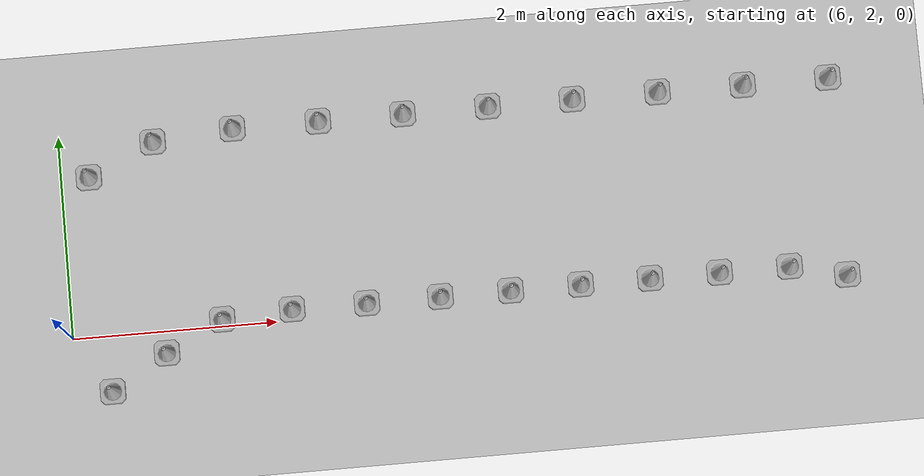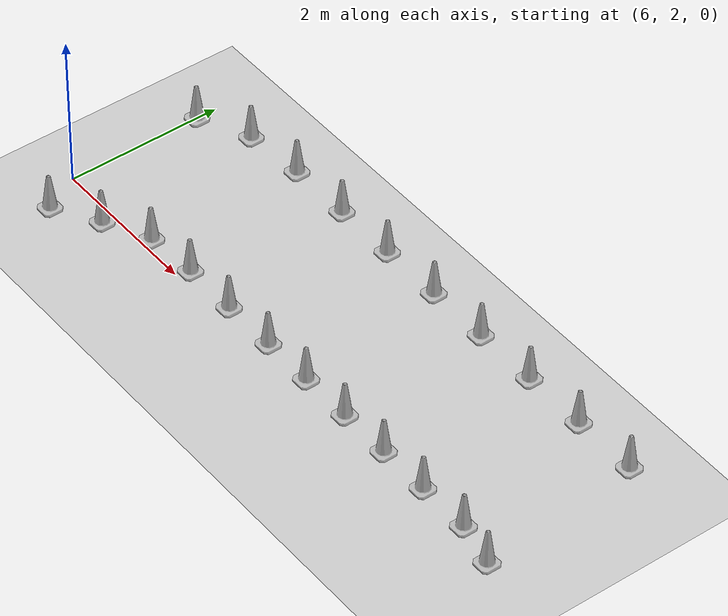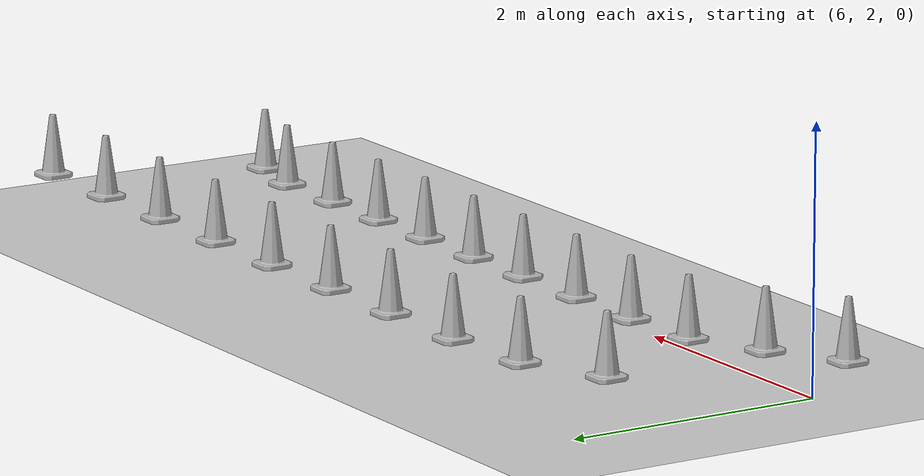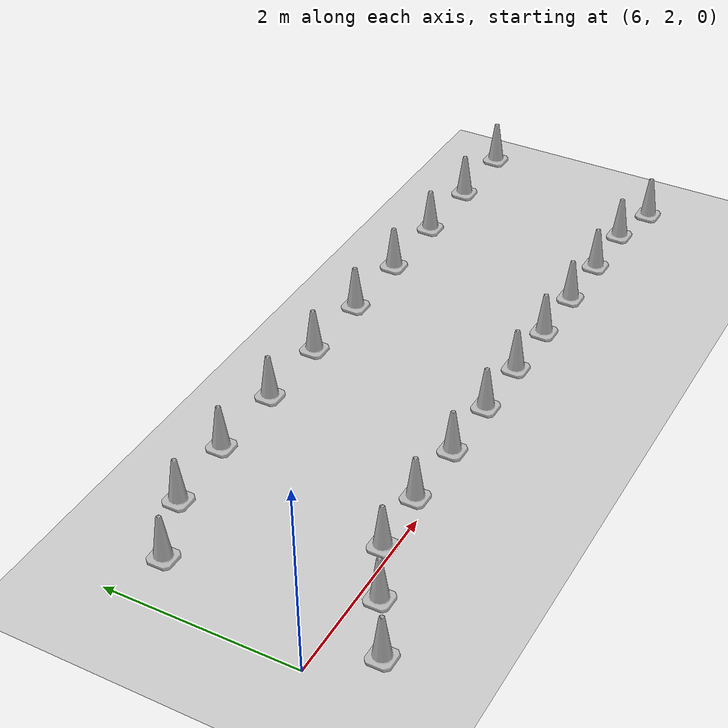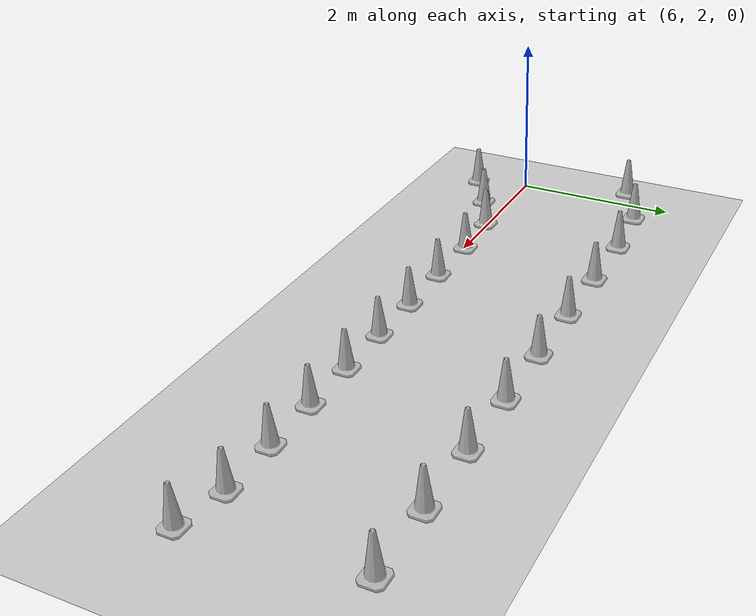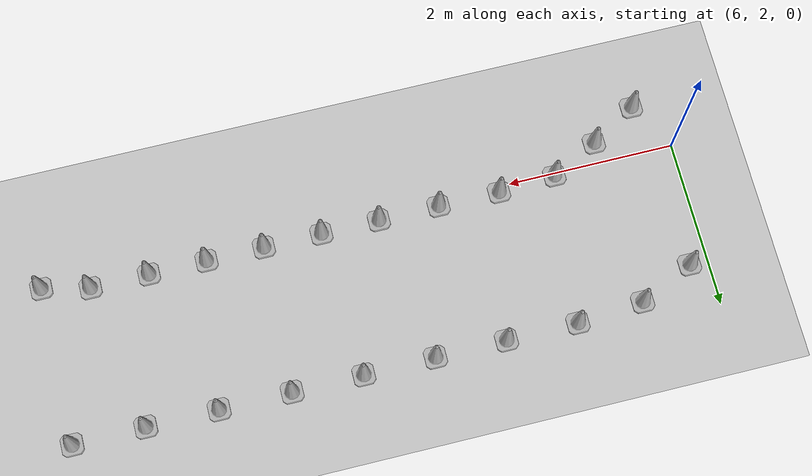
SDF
<sdf version="1.7">
 <world name="default">
  <model name="Construction_Cone_b_10">
   <link name="link">
    <inertial>
     <inertia><ixx>1</ixx><ixy>0</ixy><ixz>0</ixz><iyy>1</iyy><iyz>0</iyz><izz>1</izz></inertia>
     <mass>1</mass>
    </inertial>
    <visual name="visual">
     <geometry>
      <mesh><scale>4.9 4.9 4.5</scale><uri>./construction_cone/meshes/construction_cone_b.dae</uri></mesh>
     </geometry>
     <material><shader type="pixel"/></material>
    </visual>
    <collision name="collision">
     <geometry>
      <mesh><uri>./construction_cone/meshes/construction_cone_b.dae</uri><scale>4.9 4.9 4.5</scale></mesh>
     </geometry>
     <surface>
      <friction>
       <ode><mu>1</mu><mu2>1</mu2><fdir1>0 0 0</fdir1><slip1>0</slip1><slip2>0</slip2></ode>
       <torsional>
        <coefficient>1</coefficient>
        <patch_radius>0</patch_radius>
        <surface_radius>0</surface_radius>
        <use_patch_radius>1</use_patch_radius>
        <ode><slip>0</slip></ode>
       </torsional>
      </friction>
      <bounce><restitution_coefficient>0</restitution_coefficient><threshold>1e+06</threshold></bounce>
      <contact>
       <collide_without_contact>0</collide_without_contact>
       <collide_without_contact_bitmask>1</collide_without_contact_bitmask>
       <collide_bitmask>1</collide_bitmask>
       <ode>
        <soft_cfm>0</soft_cfm>
        <soft_erp>0.2</soft_erp>
        <kp>1e+13</kp>
        <kd>1</kd>
        <max_vel>0.01</max_vel>
        <min_depth>0</min_depth>
       </ode>
       <bullet>
        <split_impulse>1</split_impulse>
        <split_impulse_penetration_threshold>-0.01</split_impulse_penetration_threshold>
        <soft_cfm>0</soft_cfm>
        <soft_erp>0.2</soft_erp>
        <kp>1e+13</kp>
        <kd>1</kd>
       </bullet>
      </contact>
     </surface>
    </collision>
   </link>
   <static>0</static>
   <pose>6.35511 1.44825 0.1 0 0 0</pose>
  </model>
  <model name="Construction_Cone_b_11">
   <link name="link">
    <inertial>
     <inertia><ixx>1</ixx><ixy>0</ixy><ixz>0</ixz><iyy>1</iyy><iyz>0</iyz><izz>1</izz></inertia>
     <mass>1</mass>
    </inertial>
    <visual name="visual">
     <geometry>
      <mesh><scale>4.9 4.9 4.5</scale><uri>./construction_cone/meshes/construction_cone_b.dae</uri></mesh>
     </geometry>
     <material><shader type="pixel"/></material>
    </visual>
    <collision name="collision">
     <geometry>
      <mesh><uri>./construction_cone/meshes/construction_cone_b.dae</uri><scale>4.9 4.9 4.5</scale></mesh>
     </geometry>
     <surface>
      <friction>
       <ode><mu>1</mu><mu2>1</mu2><fdir1>0 0 0</fdir1><slip1>0</slip1><slip2>0</slip2></ode>
       <torsional>
        <coefficient>1</coefficient>
        <patch_radius>0</patch_radius>
        <surface_radius>0</surface_radius>
        <use_patch_radius>1</use_patch_radius>
        <ode><slip>0</slip></ode>
       </torsional>
      </friction>
      <bounce><restitution_coefficient>0</restitution_coefficient><threshold>1e+06</threshold></bounce>
      <contact>
       <collide_without_contact>0</collide_without_contact>
       <collide_without_contact_bitmask>1</collide_without_contact_bitmask>
       <collide_bitmask>1</collide_bitmask>
       <ode>
        <soft_cfm>0</soft_cfm>
        <soft_erp>0.2</soft_erp>
        <kp>1e+13</kp>
        <kd>1</kd>
        <max_vel>0.01</max_vel>
        <min_depth>0</min_depth>
       </ode>
       <bullet>
        <split_impulse>1</split_impulse>
        <split_impulse_penetration_threshold>-0.01</split_impulse_penetration_threshold>
        <soft_cfm>0</soft_cfm>
        <soft_erp>0.2</soft_erp>
        <kp>1e+13</kp>
        <kd>1</kd>
       </bullet>
      </contact>
     </surface>
    </collision>
   </link>
   <static>0</static>
   <pose>6.90827 1.77822 0.1 0 0 0</pose>
  </model>
  <model name="Construction_Cone_b_12">
   <link name="link">
    <inertial>
     <inertia><ixx>1</ixx><ixy>0</ixy><ixz>0</ixz><iyy>1</iyy><iyz>0</iyz><izz>1</izz></inertia>
     <mass>1</mass>
    </inertial>
    <visual name="visual">
     <geometry>
      <mesh><scale>4.9 4.9 4.5</scale><uri>./construction_cone/meshes/construction_cone_b.dae</uri></mesh>
     </geometry>
     <material><shader type="pixel"/></material>
    </visual>
    <collision name="collision">
     <geometry>
      <mesh><uri>./construction_cone/meshes/construction_cone_b.dae</uri><scale>4.9 4.9 4.5</scale></mesh>
     </geometry>
     <surface>
      <friction>
       <ode><mu>1</mu><mu2>1</mu2><fdir1>0 0 0</fdir1><slip1>0</slip1><slip2>0</slip2></ode>
       <torsional>
        <coefficient>1</coefficient>
        <patch_radius>0</patch_radius>
        <surface_radius>0</surface_radius>
        <use_patch_radius>1</use_patch_radius>
        <ode><slip>0</slip></ode>
       </torsional>
      </friction>
      <bounce><restitution_coefficient>0</restitution_coefficient><threshold>1e+06</threshold></bounce>
      <contact>
       <collide_without_contact>0</collide_without_contact>
       <collide_without_contact_bitmask>1</collide_without_contact_bitmask>
       <collide_bitmask>1</collide_bitmask>
       <ode>
        <soft_cfm>0</soft_cfm>
        <soft_erp>0.2</soft_erp>
        <kp>1e+13</kp>
        <kd>1</kd>
        <max_vel>0.01</max_vel>
        <min_depth>0</min_depth>
       </ode>
       <bullet>
        <split_impulse>1</split_impulse>
        <split_impulse_penetration_threshold>-0.01</split_impulse_penetration_threshold>
        <soft_cfm>0</soft_cfm>
        <soft_erp>0.2</soft_erp>
        <kp>1e+13</kp>
        <kd>1</kd>
       </bullet>
      </contact>
     </surface>
    </collision>
   </link>
   <static>0</static>
   <pose>7.47272 2.06075 0.1 0 0 0</pose>
  </model>
  <model name="Construction_Cone_b_13">
   <link name="link">
    <inertial>
     <inertia><ixx>1</ixx><ixy>0</ixy><ixz>0</ixz><iyy>1</iyy><iyz>0</iyz><izz>1</izz></inertia>
     <mass>1</mass>
    </inertial>
    <visual name="visual">
     <geometry>
      <mesh><scale>4.9 4.9 4.5</scale><uri>./construction_cone/meshes/construction_cone_b.dae</uri></mesh>
     </geometry>
     <material><shader type="pixel"/></material>
    </visual>
    <collision name="collision">
     <geometry>
      <mesh><uri>./construction_cone/meshes/construction_cone_b.dae</uri><scale>4.9 4.9 4.5</scale></mesh>
     </geometry>
     <surface>
      <friction>
       <ode><mu>1</mu><mu2>1</mu2><fdir1>0 0 0</fdir1><slip1>0</slip1><slip2>0</slip2></ode>
       <torsional>
        <coefficient>1</coefficient>
        <patch_radius>0</patch_radius>
        <surface_radius>0</surface_radius>
        <use_patch_radius>1</use_patch_radius>
        <ode><slip>0</slip></ode>
       </torsional>
      </friction>
      <bounce><restitution_coefficient>0</restitution_coefficient><threshold>1e+06</threshold></bounce>
      <contact>
       <collide_without_contact>0</collide_without_contact>
       <collide_without_contact_bitmask>1</collide_without_contact_bitmask>
       <collide_bitmask>1</collide_bitmask>
       <ode>
        <soft_cfm>0</soft_cfm>
        <soft_erp>0.2</soft_erp>
        <kp>1e+13</kp>
        <kd>1</kd>
        <max_vel>0.01</max_vel>
        <min_depth>0</min_depth>
       </ode>
       <bullet>
        <split_impulse>1</split_impulse>
        <split_impulse_penetration_threshold>-0.01</split_impulse_penetration_threshold>
        <soft_cfm>0</soft_cfm>
        <soft_erp>0.2</soft_erp>
        <kp>1e+13</kp>
        <kd>1</kd>
       </bullet>
      </contact>
     </surface>
    </collision>
   </link>
   <static>0</static>
   <pose>8.15922 2.10175 0.1 0 0 0</pose>
  </model>
  <model name="Construction_Cone_b_14">
   <link name="link">
    <inertial>
     <inertia><ixx>1</ixx><ixy>0</ixy><ixz>0</ixz><iyy>1</iyy><iyz>0</iyz><izz>1</izz></inertia>
     <mass>1</mass>
    </inertial>
    <visual name="visual">
     <geometry>
      <mesh><scale>4.9 4.9 4.5</scale><uri>./construction_cone/meshes/construction_cone_b.dae</uri></mesh>
     </geometry>
     <material><shader type="pixel"/></material>
    </visual>
    <collision name="collision">
     <geometry>
      <mesh><uri>./construction_cone/meshes/construction_cone_b.dae</uri><scale>4.9 4.9 4.5</scale></mesh>
     </geometry>
     <surface>
      <friction>
       <ode><mu>1</mu><mu2>1</mu2><fdir1>0 0 0</fdir1><slip1>0</slip1><slip2>0</slip2></ode>
       <torsional>
        <coefficient>1</coefficient>
        <patch_radius>0</patch_radius>
        <surface_radius>0</surface_radius>
        <use_patch_radius>1</use_patch_radius>
        <ode><slip>0</slip></ode>
       </torsional>
      </friction>
      <bounce><restitution_coefficient>0</restitution_coefficient><threshold>1e+06</threshold></bounce>
      <contact>
       <collide_without_contact>0</collide_without_contact>
       <collide_without_contact_bitmask>1</collide_without_contact_bitmask>
       <collide_bitmask>1</collide_bitmask>
       <ode>
        <soft_cfm>0</soft_cfm>
        <soft_erp>0.2</soft_erp>
        <kp>1e+13</kp>
        <kd>1</kd>
        <max_vel>0.01</max_vel>
        <min_depth>0</min_depth>
       </ode>
       <bullet>
        <split_impulse>1</split_impulse>
        <split_impulse_penetration_threshold>-0.01</split_impulse_penetration_threshold>
        <soft_cfm>0</soft_cfm>
        <soft_erp>0.2</soft_erp>
        <kp>1e+13</kp>
        <kd>1</kd>
       </bullet>
      </contact>
     </surface>
    </collision>
   </link>
   <static>0</static>
   <pose>8.89133 2.09742 0.1 0 0 0</pose>
  </model>
  <model name="Construction_Cone_b_15">
   <link name="link">
    <inertial>
     <inertia><ixx>1</ixx><ixy>0</ixy><ixz>0</ixz><iyy>1</iyy><iyz>0</iyz><izz>1</izz></inertia>
     <mass>1</mass>
    </inertial>
    <visual name="visual">
     <geometry>
      <mesh><scale>4.9 4.9 4.5</scale><uri>./construction_cone/meshes/construction_cone_b.dae</uri></mesh>
     </geometry>
     <material><shader type="pixel"/></material>
    </visual>
    <collision name="collision">
     <geometry>
      <mesh><uri>./construction_cone/meshes/construction_cone_b.dae</uri><scale>4.9 4.9 4.5</scale></mesh>
     </geometry>
     <surface>
      <friction>
       <ode><mu>1</mu><mu2>1</mu2><fdir1>0 0 0</fdir1><slip1>0</slip1><slip2>0</slip2></ode>
       <torsional>
        <coefficient>1</coefficient>
        <patch_radius>0</patch_radius>
        <surface_radius>0</surface_radius>
        <use_patch_radius>1</use_patch_radius>
        <ode><slip>0</slip></ode>
       </torsional>
      </friction>
      <bounce><restitution_coefficient>0</restitution_coefficient><threshold>1e+06</threshold></bounce>
      <contact>
       <collide_without_contact>0</collide_without_contact>
       <collide_without_contact_bitmask>1</collide_without_contact_bitmask>
       <collide_bitmask>1</collide_bitmask>
       <ode>
        <soft_cfm>0</soft_cfm>
        <soft_erp>0.2</soft_erp>
        <kp>1e+13</kp>
        <kd>1</kd>
        <max_vel>0.01</max_vel>
        <min_depth>0</min_depth>
       </ode>
       <bullet>
        <split_impulse>1</split_impulse>
        <split_impulse_penetration_threshold>-0.01</split_impulse_penetration_threshold>
        <soft_cfm>0</soft_cfm>
        <soft_erp>0.2</soft_erp>
        <kp>1e+13</kp>
        <kd>1</kd>
       </bullet>
      </contact>
     </surface>
    </collision>
   </link>
   <static>0</static>
   <pose>9.61253 2.09972 0.1 0 0 0</pose>
  </model>
  <model name="Construction_Cone_b_16">
   <link name="link">
    <inertial>
     <inertia><ixx>1</ixx><ixy>0</ixy><ixz>0</ixz><iyy>1</iyy><iyz>0</iyz><izz>1</izz></inertia>
     <mass>1</mass>
    </inertial>
    <visual name="visual">
     <geometry>
      <mesh><scale>4.9 4.9 4.5</scale><uri>./construction_cone/meshes/construction_cone_b.dae</uri></mesh>
     </geometry>
     <material><shader type="pixel"/></material>
    </visual>
    <collision name="collision">
     <geometry>
      <mesh><uri>./construction_cone/meshes/construction_cone_b.dae</uri><scale>4.9 4.9 4.5</scale></mesh>
     </geometry>
     <surface>
      <friction>
       <ode><mu>1</mu><mu2>1</mu2><fdir1>0 0 0</fdir1><slip1>0</slip1><slip2>0</slip2></ode>
       <torsional>
        <coefficient>1</coefficient>
        <patch_radius>0</patch_radius>
        <surface_radius>0</surface_radius>
        <use_patch_radius>1</use_patch_radius>
        <ode><slip>0</slip></ode>
       </torsional>
      </friction>
      <bounce><restitution_coefficient>0</restitution_coefficient><threshold>1e+06</threshold></bounce>
      <contact>
       <collide_without_contact>0</collide_without_contact>
       <collide_without_contact_bitmask>1</collide_without_contact_bitmask>
       <collide_bitmask>1</collide_bitmask>
       <ode>
        <soft_cfm>0</soft_cfm>
        <soft_erp>0.2</soft_erp>
        <kp>1e+13</kp>
        <kd>1</kd>
        <max_vel>0.01</max_vel>
        <min_depth>0</min_depth>
       </ode>
       <bullet>
        <split_impulse>1</split_impulse>
        <split_impulse_penetration_threshold>-0.01</split_impulse_penetration_threshold>
        <soft_cfm>0</soft_cfm>
        <soft_erp>0.2</soft_erp>
        <kp>1e+13</kp>
        <kd>1</kd>
       </bullet>
      </contact>
     </surface>
    </collision>
   </link>
   <static>0</static>
   <pose>10.3016 2.09929 0.1 0 0 0</pose>
  </model>
  <model name="Construction_Cone_b_17">
   <link name="link">
    <inertial>
     <inertia><ixx>1</ixx><ixy>0</ixy><ixz>0</ixz><iyy>1</iyy><iyz>0</iyz><izz>1</izz></inertia>
     <mass>1</mass>
    </inertial>
    <visual name="visual">
     <geometry>
      <mesh><scale>4.9 4.9 4.5</scale><uri>./construction_cone/meshes/construction_cone_b.dae</uri></mesh>
     </geometry>
     <material><shader type="pixel"/></material>
    </visual>
    <collision name="collision">
     <geometry>
      <mesh><uri>./construction_cone/meshes/construction_cone_b.dae</uri><scale>4.9 4.9 4.5</scale></mesh>
     </geometry>
     <surface>
      <friction>
       <ode><mu>1</mu><mu2>1</mu2><fdir1>0 0 0</fdir1><slip1>0</slip1><slip2>0</slip2></ode>
       <torsional>
        <coefficient>1</coefficient>
        <patch_radius>0</patch_radius>
        <surface_radius>0</surface_radius>
        <use_patch_radius>1</use_patch_radius>
        <ode><slip>0</slip></ode>
       </torsional>
      </friction>
      <bounce><restitution_coefficient>0</restitution_coefficient><threshold>1e+06</threshold></bounce>
      <contact>
       <collide_without_contact>0</collide_without_contact>
       <collide_without_contact_bitmask>1</collide_without_contact_bitmask>
       <collide_bitmask>1</collide_bitmask>
       <ode>
        <soft_cfm>0</soft_cfm>
        <soft_erp>0.2</soft_erp>
        <kp>1e+13</kp>
        <kd>1</kd>
        <max_vel>0.01</max_vel>
        <min_depth>0</min_depth>
       </ode>
       <bullet>
        <split_impulse>1</split_impulse>
        <split_impulse_penetration_threshold>-0.01</split_impulse_penetration_threshold>
        <soft_cfm>0</soft_cfm>
        <soft_erp>0.2</soft_erp>
        <kp>1e+13</kp>
        <kd>1</kd>
       </bullet>
      </contact>
     </surface>
    </collision>
   </link>
   <static>0</static>
   <pose>10.9894 2.10103 0.1 0 0 0</pose>
  </model>
  <model name="Construction_Cone_b_18">
   <link name="link">
    <inertial>
     <inertia><ixx>1</ixx><ixy>0</ixy><ixz>0</ixz><iyy>1</iyy><iyz>0</iyz><izz>1</izz></inertia>
     <mass>1</mass>
    </inertial>
    <visual name="visual">
     <geometry>
      <mesh><scale>4.9 4.9 4.5</scale><uri>./construction_cone/meshes/construction_cone_b.dae</uri></mesh>
     </geometry>
     <material><shader type="pixel"/></material>
    </visual>
    <collision name="collision">
     <geometry>
      <mesh><uri>./construction_cone/meshes/construction_cone_b.dae</uri><scale>4.9 4.9 4.5</scale></mesh>
     </geometry>
     <surface>
      <friction>
       <ode><mu>1</mu><mu2>1</mu2><fdir1>0 0 0</fdir1><slip1>0</slip1><slip2>0</slip2></ode>
       <torsional>
        <coefficient>1</coefficient>
        <patch_radius>0</patch_radius>
        <surface_radius>0</surface_radius>
        <use_patch_radius>1</use_patch_radius>
        <ode><slip>0</slip></ode>
       </torsional>
      </friction>
      <bounce><restitution_coefficient>0</restitution_coefficient><threshold>1e+06</threshold></bounce>
      <contact>
       <collide_without_contact>0</collide_without_contact>
       <collide_without_contact_bitmask>1</collide_without_contact_bitmask>
       <collide_bitmask>1</collide_bitmask>
       <ode>
        <soft_cfm>0</soft_cfm>
        <soft_erp>0.2</soft_erp>
        <kp>1e+13</kp>
        <kd>1</kd>
        <max_vel>0.01</max_vel>
        <min_depth>0</min_depth>
       </ode>
       <bullet>
        <split_impulse>1</split_impulse>
        <split_impulse_penetration_threshold>-0.01</split_impulse_penetration_threshold>
        <soft_cfm>0</soft_cfm>
        <soft_erp>0.2</soft_erp>
        <kp>1e+13</kp>
        <kd>1</kd>
       </bullet>
      </contact>
     </surface>
    </collision>
   </link>
   <static>0</static>
   <pose>11.6712 2.10049 0.1 0 0 0</pose>
  </model>
  <model name="Construction_Cone_b_19">
   <link name="link">
    <inertial>
     <inertia><ixx>1</ixx><ixy>0</ixy><ixz>0</ixz><iyy>1</iyy><iyz>0</iyz><izz>1</izz></inertia>
     <mass>1</mass>
    </inertial>
    <visual name="visual">
     <geometry>
      <mesh><scale>4.9 4.9 4.5</scale><uri>./construction_cone/meshes/construction_cone_b.dae</uri></mesh>
     </geometry>
     <material><shader type="pixel"/></material>
    </visual>
    <collision name="collision">
     <geometry>
      <mesh><uri>./construction_cone/meshes/construction_cone_b.dae</uri><scale>4.9 4.9 4.5</scale></mesh>
     </geometry>
     <surface>
      <friction>
       <ode><mu>1</mu><mu2>1</mu2><fdir1>0 0 0</fdir1><slip1>0</slip1><slip2>0</slip2></ode>
       <torsional>
        <coefficient>1</coefficient>
        <patch_radius>0</patch_radius>
        <surface_radius>0</surface_radius>
        <use_patch_radius>1</use_patch_radius>
        <ode><slip>0</slip></ode>
       </torsional>
      </friction>
      <bounce><restitution_coefficient>0</restitution_coefficient><threshold>1e+06</threshold></bounce>
      <contact>
       <collide_without_contact>0</collide_without_contact>
       <collide_without_contact_bitmask>1</collide_without_contact_bitmask>
       <collide_bitmask>1</collide_bitmask>
       <ode>
        <soft_cfm>0</soft_cfm>
        <soft_erp>0.2</soft_erp>
        <kp>1e+13</kp>
        <kd>1</kd>
        <max_vel>0.01</max_vel>
        <min_depth>0</min_depth>
       </ode>
       <bullet>
        <split_impulse>1</split_impulse>
        <split_impulse_penetration_threshold>-0.01</split_impulse_penetration_threshold>
        <soft_cfm>0</soft_cfm>
        <soft_erp>0.2</soft_erp>
        <kp>1e+13</kp>
        <kd>1</kd>
       </bullet>
      </contact>
     </surface>
    </collision>
   </link>
   <static>0</static>
   <pose>12.3527 2.09939 0.1 0 0 0</pose>
  </model>
  <model name="Construction_Cone_b_20">
   <link name="link">
    <inertial>
     <inertia><ixx>1</ixx><ixy>0</ixy><ixz>0</ixz><iyy>1</iyy><iyz>0</iyz><izz>1</izz></inertia>
     <mass>1</mass>
    </inertial>
    <visual name="visual">
     <geometry>
      <mesh><scale>4.9 4.9 4.5</scale><uri>./construction_cone/meshes/construction_cone_b.dae</uri></mesh>
     </geometry>
     <material><shader type="pixel"/></material>
    </visual>
    <collision name="collision">
     <geometry>
      <mesh><uri>./construction_cone/meshes/construction_cone_b.dae</uri><scale>4.9 4.9 4.5</scale></mesh>
     </geometry>
     <surface>
      <friction>
       <ode><mu>1</mu><mu2>1</mu2><fdir1>0 0 0</fdir1><slip1>0</slip1><slip2>0</slip2></ode>
       <torsional>
        <coefficient>1</coefficient>
        <patch_radius>0</patch_radius>
        <surface_radius>0</surface_radius>
        <use_patch_radius>1</use_patch_radius>
        <ode><slip>0</slip></ode>
       </torsional>
      </friction>
      <bounce><restitution_coefficient>0</restitution_coefficient><threshold>1e+06</threshold></bounce>
      <contact>
       <collide_without_contact>0</collide_without_contact>
       <collide_without_contact_bitmask>1</collide_without_contact_bitmask>
       <collide_bitmask>1</collide_bitmask>
       <ode>
        <soft_cfm>0</soft_cfm>
        <soft_erp>0.2</soft_erp>
        <kp>1e+13</kp>
        <kd>1</kd>
        <max_vel>0.01</max_vel>
        <min_depth>0</min_depth>
       </ode>
       <bullet>
        <split_impulse>1</split_impulse>
        <split_impulse_penetration_threshold>-0.01</split_impulse_penetration_threshold>
        <soft_cfm>0</soft_cfm>
        <soft_erp>0.2</soft_erp>
        <kp>1e+13</kp>
        <kd>1</kd>
       </bullet>
      </contact>
     </surface>
    </collision>
   </link>
   <static>0</static>
   <pose>13.0406 2.09967 0.1 0 0 0</pose>
  </model>
  <model name="Construction_Cone_b_21">
   <link name="link">
    <inertial>
     <inertia><ixx>1</ixx><ixy>0</ixy><ixz>0</ixz><iyy>1</iyy><iyz>0</iyz><izz>1</izz></inertia>
     <mass>1</mass>
    </inertial>
    <visual name="visual">
     <geometry>
      <mesh><scale>4.9 4.9 4.5</scale><uri>./construction_cone/meshes/construction_cone_b.dae</uri></mesh>
     </geometry>
     <material><shader type="pixel"/></material>
    </visual>
    <collision name="collision">
     <geometry>
      <mesh><uri>./construction_cone/meshes/construction_cone_b.dae</uri><scale>4.9 4.9 4.5</scale></mesh>
     </geometry>
     <surface>
      <friction>
       <ode><mu>1</mu><mu2>1</mu2><fdir1>0 0 0</fdir1><slip1>0</slip1><slip2>0</slip2></ode>
       <torsional>
        <coefficient>1</coefficient>
        <patch_radius>0</patch_radius>
        <surface_radius>0</surface_radius>
        <use_patch_radius>1</use_patch_radius>
        <ode><slip>0</slip></ode>
       </torsional>
      </friction>
      <bounce><restitution_coefficient>0</restitution_coefficient><threshold>1e+06</threshold></bounce>
      <contact>
       <collide_without_contact>0</collide_without_contact>
       <collide_without_contact_bitmask>1</collide_without_contact_bitmask>
       <collide_bitmask>1</collide_bitmask>
       <ode>
        <soft_cfm>0</soft_cfm>
        <soft_erp>0.2</soft_erp>
        <kp>1e+13</kp>
        <kd>1</kd>
        <max_vel>0.01</max_vel>
        <min_depth>0</min_depth>
       </ode>
       <bullet>
        <split_impulse>1</split_impulse>
        <split_impulse_penetration_threshold>-0.01</split_impulse_penetration_threshold>
        <soft_cfm>0</soft_cfm>
        <soft_erp>0.2</soft_erp>
        <kp>1e+13</kp>
        <kd>1</kd>
       </bullet>
      </contact>
     </surface>
    </collision>
   </link>
   <static>0</static>
   <pose>13.5953 1.97161 0.1 0 0 0</pose>
  </model>
  <model name="Construction_Cone_y_11">
   <link name="link">
    <inertial>
     <pose>0 0 0.1 0 -0 0</pose>
     <inertia><ixx>1</ixx><ixy>0</ixy><ixz>0</ixz><iyy>1</iyy><iyz>0</iyz><izz>1</izz></inertia>
     <mass>1</mass>
    </inertial>
    <pose>0 0 0.1 0 -0 0</pose>
    <visual name="visual">
     <geometry>
      <mesh><scale>4.9 4.9 4.5</scale><uri>./construction_cone/meshes/construction_cone_y.dae</uri></mesh>
     </geometry>
     <material><shader type="pixel"/></material>
     <pose>0 0 0.1 0 -0 0</pose>
    </visual>
    <collision name="collision">
     <pose>0 0 0.1 0 -0 0</pose>
     <geometry>
      <mesh><uri>./construction_cone/meshes/construction_cone_y.dae</uri><scale>4.9 4.9 4.5</scale></mesh>
     </geometry>
     <surface>
      <friction>
       <ode><mu>1</mu><mu2>1</mu2><fdir1>0 0 0</fdir1><slip1>0</slip1><slip2>0</slip2></ode>
       <torsional>
        <coefficient>1</coefficient>
        <patch_radius>0</patch_radius>
        <surface_radius>0</surface_radius>
        <use_patch_radius>1</use_patch_radius>
        <ode><slip>0</slip></ode>
       </torsional>
      </friction>
      <bounce><restitution_coefficient>0</restitution_coefficient><threshold>1e+06</threshold></bounce>
      <contact>
       <collide_without_contact>0</collide_without_contact>
       <collide_without_contact_bitmask>1</collide_without_contact_bitmask>
       <collide_bitmask>1</collide_bitmask>
       <ode>
        <soft_cfm>0</soft_cfm>
        <soft_erp>0.2</soft_erp>
        <kp>1e+13</kp>
        <kd>1</kd>
        <max_vel>0.01</max_vel>
        <min_depth>0</min_depth>
       </ode>
       <bullet>
        <split_impulse>1</split_impulse>
        <split_impulse_penetration_threshold>-0.01</split_impulse_penetration_threshold>
        <soft_cfm>0</soft_cfm>
        <soft_erp>0.2</soft_erp>
        <kp>1e+13</kp>
        <kd>1</kd>
       </bullet>
      </contact>
     </surface>
    </collision>
   </link>
   <static>0</static>
   <pose>6.94224 3.83432 0.1 0 0 0</pose>
  </model>
  <model name="Construction_Cone_y_12">
   <link name="link">
    <inertial>
     <pose>0 0 0.1 0 -0 0</pose>
     <inertia><ixx>1</ixx><ixy>0</ixy><ixz>0</ixz><iyy>1</iyy><iyz>0</iyz><izz>1</izz></inertia>
     <mass>1</mass>
    </inertial>
    <pose>0 0 0.1 0 -0 0</pose>
    <visual name="visual">
     <geometry>
      <mesh><scale>4.9 4.9 4.5</scale><uri>./construction_cone/meshes/construction_cone_y.dae</uri></mesh>
     </geometry>
     <material><shader type="pixel"/></material>
     <pose>0 0 0.1 0 -0 0</pose>
    </visual>
    <collision name="collision">
     <pose>0 0 0.1 0 -0 0</pose>
     <geometry>
      <mesh><uri>./construction_cone/meshes/construction_cone_y.dae</uri><scale>4.9 4.9 4.5</scale></mesh>
     </geometry>
     <surface>
      <friction>
       <ode><mu>1</mu><mu2>1</mu2><fdir1>0 0 0</fdir1><slip1>0</slip1><slip2>0</slip2></ode>
       <torsional>
        <coefficient>1</coefficient>
        <patch_radius>0</patch_radius>
        <surface_radius>0</surface_radius>
        <use_patch_radius>1</use_patch_radius>
        <ode><slip>0</slip></ode>
       </torsional>
      </friction>
      <bounce><restitution_coefficient>0</restitution_coefficient><threshold>1e+06</threshold></bounce>
      <contact>
       <collide_without_contact>0</collide_without_contact>
       <collide_without_contact_bitmask>1</collide_without_contact_bitmask>
       <collide_bitmask>1</collide_bitmask>
       <ode>
        <soft_cfm>0</soft_cfm>
        <soft_erp>0.2</soft_erp>
        <kp>1e+13</kp>
        <kd>1</kd>
        <max_vel>0.01</max_vel>
        <min_depth>0</min_depth>
       </ode>
       <bullet>
        <split_impulse>1</split_impulse>
        <split_impulse_penetration_threshold>-0.01</split_impulse_penetration_threshold>
        <soft_cfm>0</soft_cfm>
        <soft_erp>0.2</soft_erp>
        <kp>1e+13</kp>
        <kd>1</kd>
       </bullet>
      </contact>
     </surface>
    </collision>
   </link>
   <static>0</static>
   <pose>7.72739 3.89826 0.1 0 0 0</pose>
  </model>
  <model name="Construction_Cone_y_14">
   <link name="link">
    <inertial>
     <pose>0 0 0.1 0 -0 0</pose>
     <inertia><ixx>1</ixx><ixy>0</ixy><ixz>0</ixz><iyy>1</iyy><iyz>0</iyz><izz>1</izz></inertia>
     <mass>1</mass>
    </inertial>
    <pose>0 0 0.1 0 -0 0</pose>
    <visual name="visual">
     <geometry>
      <mesh><scale>4.9 4.9 4.5</scale><uri>./construction_cone/meshes/construction_cone_y.dae</uri></mesh>
     </geometry>
     <material><shader type="pixel"/></material>
     <pose>0 0 0.1 0 -0 0</pose>
    </visual>
    <collision name="collision">
     <pose>0 0 0.1 0 -0 0</pose>
     <geometry>
      <mesh><uri>./construction_cone/meshes/construction_cone_y.dae</uri><scale>4.9 4.9 4.5</scale></mesh>
     </geometry>
     <surface>
      <friction>
       <ode><mu>1</mu><mu2>1</mu2><fdir1>0 0 0</fdir1><slip1>0</slip1><slip2>0</slip2></ode>
       <torsional>
        <coefficient>1</coefficient>
        <patch_radius>0</patch_radius>
        <surface_radius>0</surface_radius>
        <use_patch_radius>1</use_patch_radius>
        <ode><slip>0</slip></ode>
       </torsional>
      </friction>
      <bounce><restitution_coefficient>0</restitution_coefficient><threshold>1e+06</threshold></bounce>
      <contact>
       <collide_without_contact>0</collide_without_contact>
       <collide_without_contact_bitmask>1</collide_without_contact_bitmask>
       <collide_bitmask>1</collide_bitmask>
       <ode>
        <soft_cfm>0</soft_cfm>
        <soft_erp>0.2</soft_erp>
        <kp>1e+13</kp>
        <kd>1</kd>
        <max_vel>0.01</max_vel>
        <min_depth>0</min_depth>
       </ode>
       <bullet>
        <split_impulse>1</split_impulse>
        <split_impulse_penetration_threshold>-0.01</split_impulse_penetration_threshold>
        <soft_cfm>0</soft_cfm>
        <soft_erp>0.2</soft_erp>
        <kp>1e+13</kp>
        <kd>1</kd>
       </bullet>
      </contact>
     </surface>
    </collision>
   </link>
   <static>0</static>
   <pose>8.56764 3.89829 0.1 0 0 0</pose>
  </model>
  <model name="Construction_Cone_y_15">
   <link name="link">
    <inertial>
     <pose>0 0 0.1 0 -0 0</pose>
     <inertia><ixx>1</ixx><ixy>0</ixy><ixz>0</ixz><iyy>1</iyy><iyz>0</iyz><izz>1</izz></inertia>
     <mass>1</mass>
    </inertial>
    <pose>0 0 0.1 0 -0 0</pose>
    <visual name="visual">
     <geometry>
      <mesh><scale>4.9 4.9 4.5</scale><uri>./construction_cone/meshes/construction_cone_y.dae</uri></mesh>
     </geometry>
     <material><shader type="pixel"/></material>
     <pose>0 0 0.1 0 -0 0</pose>
    </visual>
    <collision name="collision">
     <pose>0 0 0.1 0 -0 0</pose>
     <geometry>
      <mesh><uri>./construction_cone/meshes/construction_cone_y.dae</uri><scale>4.9 4.9 4.5</scale></mesh>
     </geometry>
     <surface>
      <friction>
       <ode><mu>1</mu><mu2>1</mu2><fdir1>0 0 0</fdir1><slip1>0</slip1><slip2>0</slip2></ode>
       <torsional>
        <coefficient>1</coefficient>
        <patch_radius>0</patch_radius>
        <surface_radius>0</surface_radius>
        <use_patch_radius>1</use_patch_radius>
        <ode><slip>0</slip></ode>
       </torsional>
      </friction>
      <bounce><restitution_coefficient>0</restitution_coefficient><threshold>1e+06</threshold></bounce>
      <contact>
       <collide_without_contact>0</collide_without_contact>
       <collide_without_contact_bitmask>1</collide_without_contact_bitmask>
       <collide_bitmask>1</collide_bitmask>
       <ode>
        <soft_cfm>0</soft_cfm>
        <soft_erp>0.2</soft_erp>
        <kp>1e+13</kp>
        <kd>1</kd>
        <max_vel>0.01</max_vel>
        <min_depth>0</min_depth>
       </ode>
       <bullet>
        <split_impulse>1</split_impulse>
        <split_impulse_penetration_threshold>-0.01</split_impulse_penetration_threshold>
        <soft_cfm>0</soft_cfm>
        <soft_erp>0.2</soft_erp>
        <kp>1e+13</kp>
        <kd>1</kd>
       </bullet>
      </contact>
     </surface>
    </collision>
   </link>
   <static>0</static>
   <pose>9.39821 3.89846 0.1 0 0 0</pose>
  </model>
  <model name="Construction_Cone_y_16">
   <link name="link">
    <inertial>
     <pose>0 0 0.1 0 -0 0</pose>
     <inertia><ixx>1</ixx><ixy>0</ixy><ixz>0</ixz><iyy>1</iyy><iyz>0</iyz><izz>1</izz></inertia>
     <mass>1</mass>
    </inertial>
    <pose>0 0 0.1 0 -0 0</pose>
    <visual name="visual">
     <geometry>
      <mesh><scale>4.9 4.9 4.5</scale><uri>./construction_cone/meshes/construction_cone_y.dae</uri></mesh>
     </geometry>
     <material><shader type="pixel"/></material>
     <pose>0 0 0.1 0 -0 0</pose>
    </visual>
    <collision name="collision">
     <pose>0 0 0.1 0 -0 0</pose>
     <geometry>
      <mesh><uri>./construction_cone/meshes/construction_cone_y.dae</uri><scale>4.9 4.9 4.5</scale></mesh>
     </geometry>
     <surface>
      <friction>
       <ode><mu>1</mu><mu2>1</mu2><fdir1>0 0 0</fdir1><slip1>0</slip1><slip2>0</slip2></ode>
       <torsional>
        <coefficient>1</coefficient>
        <patch_radius>0</patch_radius>
        <surface_radius>0</surface_radius>
        <use_patch_radius>1</use_patch_radius>
        <ode><slip>0</slip></ode>
       </torsional>
      </friction>
      <bounce><restitution_coefficient>0</restitution_coefficient><threshold>1e+06</threshold></bounce>
      <contact>
       <collide_without_contact>0</collide_without_contact>
       <collide_without_contact_bitmask>1</collide_without_contact_bitmask>
       <collide_bitmask>1</collide_bitmask>
       <ode>
        <soft_cfm>0</soft_cfm>
        <soft_erp>0.2</soft_erp>
        <kp>1e+13</kp>
        <kd>1</kd>
        <max_vel>0.01</max_vel>
        <min_depth>0</min_depth>
       </ode>
       <bullet>
        <split_impulse>1</split_impulse>
        <split_impulse_penetration_threshold>-0.01</split_impulse_penetration_threshold>
        <soft_cfm>0</soft_cfm>
        <soft_erp>0.2</soft_erp>
        <kp>1e+13</kp>
        <kd>1</kd>
       </bullet>
      </contact>
     </surface>
    </collision>
   </link>
   <static>0</static>
   <pose>10.2322 3.90052 0.1 0 0 0</pose>
  </model>
  <model name="Construction_Cone_y_17">
   <link name="link">
    <inertial>
     <pose>0 0 0.1 0 -0 0</pose>
     <inertia><ixx>1</ixx><ixy>0</ixy><ixz>0</ixz><iyy>1</iyy><iyz>0</iyz><izz>1</izz></inertia>
     <mass>1</mass>
    </inertial>
    <pose>0 0 0.1 0 -0 0</pose>
    <visual name="visual">
     <geometry>
      <mesh><scale>4.9 4.9 4.5</scale><uri>./construction_cone/meshes/construction_cone_y.dae</uri></mesh>
     </geometry>
     <material><shader type="pixel"/></material>
     <pose>0 0 0.1 0 -0 0</pose>
    </visual>
    <collision name="collision">
     <pose>0 0 0.1 0 -0 0</pose>
     <geometry>
      <mesh><uri>./construction_cone/meshes/construction_cone_y.dae</uri><scale>4.9 4.9 4.5</scale></mesh>
     </geometry>
     <surface>
      <friction>
       <ode><mu>1</mu><mu2>1</mu2><fdir1>0 0 0</fdir1><slip1>0</slip1><slip2>0</slip2></ode>
       <torsional>
        <coefficient>1</coefficient>
        <patch_radius>0</patch_radius>
        <surface_radius>0</surface_radius>
        <use_patch_radius>1</use_patch_radius>
        <ode><slip>0</slip></ode>
       </torsional>
      </friction>
      <bounce><restitution_coefficient>0</restitution_coefficient><threshold>1e+06</threshold></bounce>
      <contact>
       <collide_without_contact>0</collide_without_contact>
       <collide_without_contact_bitmask>1</collide_without_contact_bitmask>
       <collide_bitmask>1</collide_bitmask>
       <ode>
        <soft_cfm>0</soft_cfm>
        <soft_erp>0.2</soft_erp>
        <kp>1e+13</kp>
        <kd>1</kd>
        <max_vel>0.01</max_vel>
        <min_depth>0</min_depth>
       </ode>
       <bullet>
        <split_impulse>1</split_impulse>
        <split_impulse_penetration_threshold>-0.01</split_impulse_penetration_threshold>
        <soft_cfm>0</soft_cfm>
        <soft_erp>0.2</soft_erp>
        <kp>1e+13</kp>
        <kd>1</kd>
       </bullet>
      </contact>
     </surface>
    </collision>
   </link>
   <static>0</static>
   <pose>11.0604 3.89985 0.1 0 0 0</pose>
  </model>
  <model name="Construction_Cone_y_18">
   <link name="link">
    <inertial>
     <pose>0 0 0.1 0 -0 0</pose>
     <inertia><ixx>1</ixx><ixy>0</ixy><ixz>0</ixz><iyy>1</iyy><iyz>0</iyz><izz>1</izz></inertia>
     <mass>1</mass>
    </inertial>
    <pose>0 0 0.1 0 -0 0</pose>
    <visual name="visual">
     <geometry>
      <mesh><scale>4.9 4.9 4.5</scale><uri>./construction_cone/meshes/construction_cone_y.dae</uri></mesh>
     </geometry>
     <material><shader type="pixel"/></material>
     <pose>0 0 0.1 0 -0 0</pose>
    </visual>
    <collision name="collision">
     <pose>0 0 0.1 0 -0 0</pose>
     <geometry>
      <mesh><uri>./construction_cone/meshes/construction_cone_y.dae</uri><scale>4.9 4.9 4.5</scale></mesh>
     </geometry>
     <surface>
      <friction>
       <ode><mu>1</mu><mu2>1</mu2><fdir1>0 0 0</fdir1><slip1>0</slip1><slip2>0</slip2></ode>
       <torsional>
        <coefficient>1</coefficient>
        <patch_radius>0</patch_radius>
        <surface_radius>0</surface_radius>
        <use_patch_radius>1</use_patch_radius>
        <ode><slip>0</slip></ode>
       </torsional>
      </friction>
      <bounce><restitution_coefficient>0</restitution_coefficient><threshold>1e+06</threshold></bounce>
      <contact>
       <collide_without_contact>0</collide_without_contact>
       <collide_without_contact_bitmask>1</collide_without_contact_bitmask>
       <collide_bitmask>1</collide_bitmask>
       <ode>
        <soft_cfm>0</soft_cfm>
        <soft_erp>0.2</soft_erp>
        <kp>1e+13</kp>
        <kd>1</kd>
        <max_vel>0.01</max_vel>
        <min_depth>0</min_depth>
       </ode>
       <bullet>
        <split_impulse>1</split_impulse>
        <split_impulse_penetration_threshold>-0.01</split_impulse_penetration_threshold>
        <soft_cfm>0</soft_cfm>
        <soft_erp>0.2</soft_erp>
        <kp>1e+13</kp>
        <kd>1</kd>
       </bullet>
      </contact>
     </surface>
    </collision>
   </link>
   <static>0</static>
   <pose>11.8986 3.89918 0.1 0 0 0</pose>
  </model>
  <model name="Construction_Cone_y_19">
   <link name="link">
    <inertial>
     <pose>0 0 0.1 0 -0 0</pose>
     <inertia><ixx>1</ixx><ixy>0</ixy><ixz>0</ixz><iyy>1</iyy><iyz>0</iyz><izz>1</izz></inertia>
     <mass>1</mass>
    </inertial>
    <pose>0 0 0.1 0 -0 0</pose>
    <visual name="visual">
     <geometry>
      <mesh><scale>4.9 4.9 4.5</scale><uri>./construction_cone/meshes/construction_cone_y.dae</uri></mesh>
     </geometry>
     <material><shader type="pixel"/></material>
     <pose>0 0 0.1 0 -0 0</pose>
    </visual>
    <collision name="collision">
     <pose>0 0 0.1 0 -0 0</pose>
     <geometry>
      <mesh><uri>./construction_cone/meshes/construction_cone_y.dae</uri><scale>4.9 4.9 4.5</scale></mesh>
     </geometry>
     <surface>
      <friction>
       <ode><mu>1</mu><mu2>1</mu2><fdir1>0 0 0</fdir1><slip1>0</slip1><slip2>0</slip2></ode>
       <torsional>
        <coefficient>1</coefficient>
        <patch_radius>0</patch_radius>
        <surface_radius>0</surface_radius>
        <use_patch_radius>1</use_patch_radius>
        <ode><slip>0</slip></ode>
       </torsional>
      </friction>
      <bounce><restitution_coefficient>0</restitution_coefficient><threshold>1e+06</threshold></bounce>
      <contact>
       <collide_without_contact>0</collide_without_contact>
       <collide_without_contact_bitmask>1</collide_without_contact_bitmask>
       <collide_bitmask>1</collide_bitmask>
       <ode>
        <soft_cfm>0</soft_cfm>
        <soft_erp>0.2</soft_erp>
        <kp>1e+13</kp>
        <kd>1</kd>
        <max_vel>0.01</max_vel>
        <min_depth>0</min_depth>
       </ode>
       <bullet>
        <split_impulse>1</split_impulse>
        <split_impulse_penetration_threshold>-0.01</split_impulse_penetration_threshold>
        <soft_cfm>0</soft_cfm>
        <soft_erp>0.2</soft_erp>
        <kp>1e+13</kp>
        <kd>1</kd>
       </bullet>
      </contact>
     </surface>
    </collision>
   </link>
   <static>0</static>
   <pose>12.7361 3.89558 0.1 0 0 0</pose>
  </model>
  <model name="Construction_Cone_y_21">
   <link name="link">
    <inertial>
     <pose>0 0 0.1 0 -0 0</pose>
     <inertia><ixx>1</ixx><ixy>0</ixy><ixz>0</ixz><iyy>1</iyy><iyz>0</iyz><izz>1</izz></inertia>
     <mass>1</mass>
    </inertial>
    <pose>0 0 0.1 0 -0 0</pose>
    <visual name="visual">
     <geometry>
      <mesh><scale>4.9 4.9 4.5</scale><uri>./construction_cone/meshes/construction_cone_y.dae</uri></mesh>
     </geometry>
     <material><shader type="pixel"/></material>
     <pose>0 0 0.1 0 -0 0</pose>
    </visual>
    <collision name="collision">
     <pose>0 0 0.1 0 -0 0</pose>
     <geometry>
      <mesh><uri>./construction_cone/meshes/construction_cone_y.dae</uri><scale>4.9 4.9 4.5</scale></mesh>
     </geometry>
     <surface>
      <friction>
       <ode><mu>1</mu><mu2>1</mu2><fdir1>0 0 0</fdir1><slip1>0</slip1><slip2>0</slip2></ode>
       <torsional>
        <coefficient>1</coefficient>
        <patch_radius>0</patch_radius>
        <surface_radius>0</surface_radius>
        <use_patch_radius>1</use_patch_radius>
        <ode><slip>0</slip></ode>
       </torsional>
      </friction>
      <bounce><restitution_coefficient>0</restitution_coefficient><threshold>1e+06</threshold></bounce>
      <contact>
       <collide_without_contact>0</collide_without_contact>
       <collide_without_contact_bitmask>1</collide_without_contact_bitmask>
       <collide_bitmask>1</collide_bitmask>
       <ode>
        <soft_cfm>0</soft_cfm>
        <soft_erp>0.2</soft_erp>
        <kp>1e+13</kp>
        <kd>1</kd>
        <max_vel>0.01</max_vel>
        <min_depth>0</min_depth>
       </ode>
       <bullet>
        <split_impulse>1</split_impulse>
        <split_impulse_penetration_threshold>-0.01</split_impulse_penetration_threshold>
        <soft_cfm>0</soft_cfm>
        <soft_erp>0.2</soft_erp>
        <kp>1e+13</kp>
        <kd>1</kd>
       </bullet>
      </contact>
     </surface>
    </collision>
   </link>
   <static>0</static>
   <pose>13.5722 3.89814 0.1 0 0 0</pose>
  </model>
  <model name="Construction_Cone_y_134">
   <link name="link">
    <inertial>
     <pose>0 0 0.1 0 -0 0</pose>
     <inertia><ixx>1</ixx><ixy>0</ixy><ixz>0</ixz><iyy>1</iyy><iyz>0</iyz><izz>1</izz></inertia>
     <mass>1</mass>
    </inertial>
    <pose>0 0 0.1 0 -0 0</pose>
    <visual name="visual">
     <geometry>
      <mesh><scale>4.9 4.9 4.5</scale><uri>./construction_cone/meshes/construction_cone_y.dae</uri></mesh>
     </geometry>
     <material><shader type="pixel"/></material>
     <pose>0 0 0.1 0 -0 0</pose>
    </visual>
    <collision name="collision">
     <pose>0 0 0.1 0 -0 0</pose>
     <geometry>
      <mesh><uri>./construction_cone/meshes/construction_cone_y.dae</uri><scale>4.9 4.9 4.5</scale></mesh>
     </geometry>
     <surface>
      <friction>
       <ode><mu>1</mu><mu2>1</mu2><fdir1>0 0 0</fdir1><slip1>0</slip1><slip2>0</slip2></ode>
       <torsional>
        <coefficient>1</coefficient>
        <patch_radius>0</patch_radius>
        <surface_radius>0</surface_radius>
        <use_patch_radius>1</use_patch_radius>
        <ode><slip>0</slip></ode>
       </torsional>
      </friction>
      <bounce><restitution_coefficient>0</restitution_coefficient><threshold>1e+06</threshold></bounce>
      <contact>
       <collide_without_contact>0</collide_without_contact>
       <collide_without_contact_bitmask>1</collide_without_contact_bitmask>
       <collide_bitmask>1</collide_bitmask>
       <ode>
        <soft_cfm>0</soft_cfm>
        <soft_erp>0.2</soft_erp>
        <kp>1e+13</kp>
        <kd>1</kd>
        <max_vel>0.01</max_vel>
        <min_depth>0</min_depth>
       </ode>
       <bullet>
        <split_impulse>1</split_impulse>
        <split_impulse_penetration_threshold>-0.01</split_impulse_penetration_threshold>
        <soft_cfm>0</soft_cfm>
        <soft_erp>0.2</soft_erp>
        <kp>1e+13</kp>
        <kd>1</kd>
       </bullet>
      </contact>
     </surface>
    </collision>
   </link>
   <static>0</static>
   <pose>6.29459 3.53797 0.1 0 0 0</pose>
  </model>
  <model name="ground_plane">
   <static>1</static>
   <link name="link">
    <collision name="collision">
     <geometry><plane><normal>0 0 1</normal><size>100 100</size></plane></geometry>
     <surface>
      <contact><collide_bitmask>65535</collide_bitmask></contact>
      <friction><ode><mu>100</mu><mu2>50</mu2></ode></friction>
     </surface>
    </collision>
    <visual name="visual">
     <cast_shadows>0</cast_shadows>
     <geometry><plane><normal>0 0 1</normal><size>100 100</size></plane></geometry>
     <material>
      <script><uri>file://media/materials/scripts/gazebo.material</uri><name>Gazebo/Grey</name></script>
     </material>
    </visual>
   </link>
   <pose>0 0 -0.001 0 -0 0</pose>
  </model>
 </world>
</sdf>
